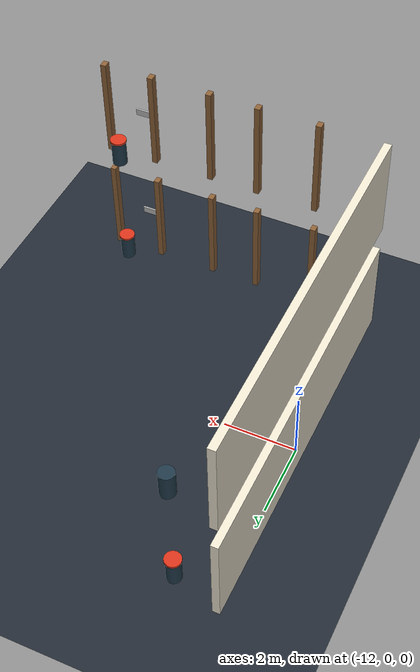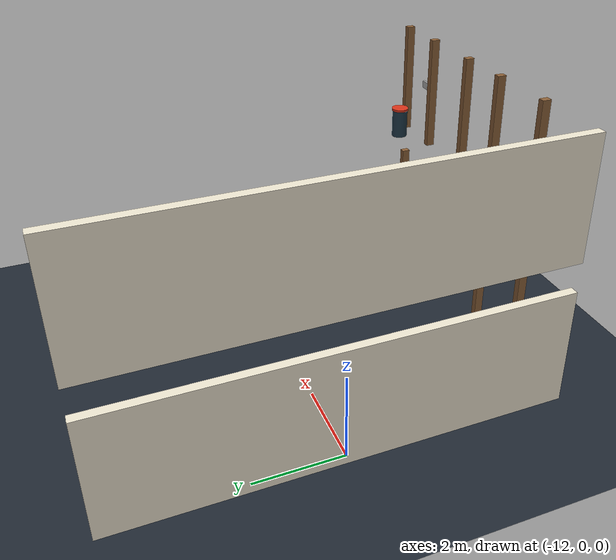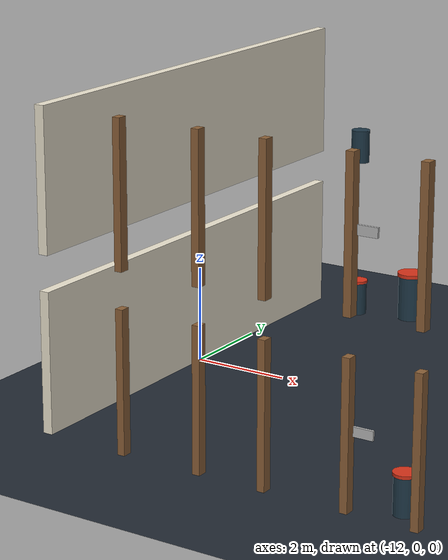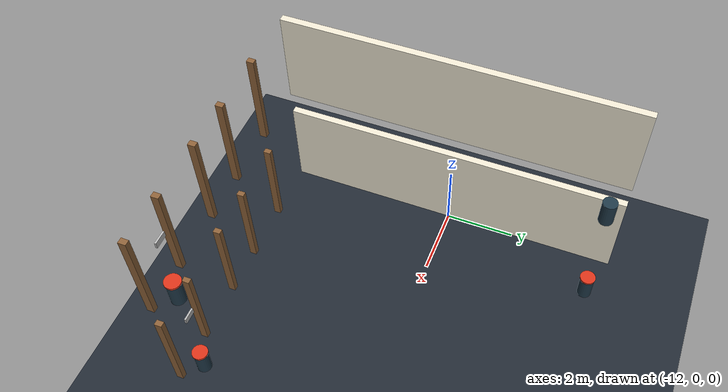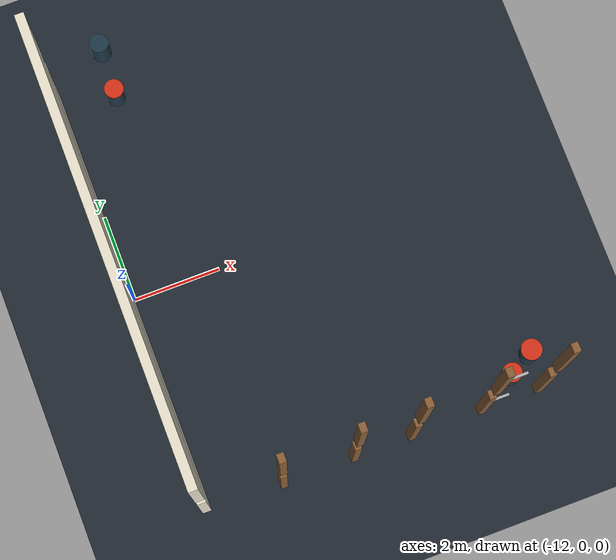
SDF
<sdf version="1.6">
 <world name="hotel_two_floor">
  <model name="ground_plane">
   <static>true</static>
   <link name="link">
    <collision name="col">
     <geometry><plane><normal>0 0 1</normal><size>100 100</size></plane></geometry>
    </collision>
    <visual name="vis">
     <geometry><plane><normal>0 0 1</normal><size>100 100</size></plane></geometry>
     <material><ambient>0.13 0.16 0.20 1</ambient><diffuse>0.13 0.16 0.20 1</diffuse></material>
    </visual>
   </link>
  </model>
  <model name="f1_wall_west">
   <static>true</static>
   <pose>-12.1000 0.0000 1.4000 0 0 0</pose>
   <link name="link">
    <collision name="col"><geometry><box><size>0.2000 10.0000 2.8000</size></box></geometry></collision>
    <visual name="vis">
     <geometry><box><size>0.2000 10.0000 2.8000</size></box></geometry>
     <material>
      <ambient>0.93 0.90 0.82 1</ambient>
      <diffuse>0.93 0.90 0.82 1</diffuse>
      <specular>0.10 0.10 0.10 1</specular>
     </material>
    </visual>
   </link>
  </model>
  <model name="f1_dp_s0L">
   <static>true</static>
   <pose>-10.3250 -5.0000 1.4000 0 0 0</pose>
   <link name="link">
    <collision name="col"><geometry><box><size>0.1500 0.2000 2.8000</size></box></geometry></collision>
    <visual name="vis">
     <geometry><box><size>0.1500 0.2000 2.8000</size></box></geometry>
     <material>
      <ambient>0.55 0.38 0.22 1</ambient>
      <diffuse>0.55 0.38 0.22 1</diffuse>
      <specular>0.20 0.20 0.20 1</specular>
     </material>
    </visual>
   </link>
  </model>
  <model name="f1_dp_s0R">
   <static>true</static>
   <pose>-8.6750 -5.0000 1.4000 0 0 0</pose>
   <link name="link">
    <collision name="col"><geometry><box><size>0.1500 0.2000 2.8000</size></box></geometry></collision>
    <visual name="vis">
     <geometry><box><size>0.1500 0.2000 2.8000</size></box></geometry>
     <material>
      <ambient>0.55 0.38 0.22 1</ambient>
      <diffuse>0.55 0.38 0.22 1</diffuse>
      <specular>0.20 0.20 0.20 1</specular>
     </material>
    </visual>
   </link>
  </model>
  <model name="f1_dp_s1L">
   <static>true</static>
   <pose>-7.3250 -5.0000 1.4000 0 0 0</pose>
   <link name="link">
    <collision name="col"><geometry><box><size>0.1500 0.2000 2.8000</size></box></geometry></collision>
    <visual name="vis">
     <geometry><box><size>0.1500 0.2000 2.8000</size></box></geometry>
     <material>
      <ambient>0.55 0.38 0.22 1</ambient>
      <diffuse>0.55 0.38 0.22 1</diffuse>
      <specular>0.20 0.20 0.20 1</specular>
     </material>
    </visual>
   </link>
  </model>
  <model name="f1_dp_s1R">
   <static>true</static>
   <pose>-5.6750 -5.0000 1.4000 0 0 0</pose>
   <link name="link">
    <collision name="col"><geometry><box><size>0.1500 0.2000 2.8000</size></box></geometry></collision>
    <visual name="vis">
     <geometry><box><size>0.1500 0.2000 2.8000</size></box></geometry>
     <material>
      <ambient>0.55 0.38 0.22 1</ambient>
      <diffuse>0.55 0.38 0.22 1</diffuse>
      <specular>0.20 0.20 0.20 1</specular>
     </material>
    </visual>
   </link>
  </model>
  <model name="f1_sign_s1">
   <static>true</static>
   <pose>-5.3500 -5.0250 1.5000 0 0 0</pose>
   <link name="link">
    <collision name="col"><geometry><box><size>0.3800 0.0500 0.1800</size></box></geometry></collision>
    <visual name="vis">
     <geometry><box><size>0.3800 0.0500 0.1800</size></box></geometry>
     <material>
      <material>
       <ambient>0.90 0.36 0.10 1</ambient>
       <diffuse>0.90 0.36 0.10 1</diffuse>
       <specular>0.10 0.10 0.10 1</specular>
      </material>
     </material>
    </visual>
   </link>
  </model>
  <model name="f1_dp_s2L">
   <static>true</static>
   <pose>-4.3250 -5.0000 1.4000 0 0 0</pose>
   <link name="link">
    <collision name="col"><geometry><box><size>0.1500 0.2000 2.8000</size></box></geometry></collision>
    <visual name="vis">
     <geometry><box><size>0.1500 0.2000 2.8000</size></box></geometry>
     <material>
      <ambient>0.55 0.38 0.22 1</ambient>
      <diffuse>0.55 0.38 0.22 1</diffuse>
      <specular>0.20 0.20 0.20 1</specular>
     </material>
    </visual>
   </link>
  </model>
  <model name="f1_trash_0_body">
   <static>true</static>
   <pose>-10.8000 4.5500 0.3600 0 0 0</pose>
   <link name="link">
    <visual name="vis">
     <geometry><cylinder><radius>0.2</radius><length>0.72</length></cylinder></geometry>
     <material>
      <ambient>0.12 0.22 0.28 1</ambient>
      <diffuse>0.12 0.22 0.28 1</diffuse>
      <specular>0.30 0.30 0.30 1</specular>
     </material>
    </visual>
   </link>
  </model>
  <model name="f1_trash_0_lid">
   <static>true</static>
   <pose>-10.8000 4.5500 0.7500 0 0 0</pose>
   <link name="link">
    <visual name="vis">
     <geometry><cylinder><radius>0.22</radius><length>0.06</length></cylinder></geometry>
     <material>
      <ambient>0.85 0.20 0.10 1</ambient>
      <diffuse>0.85 0.20 0.10 1</diffuse>
      <specular>0.30 0.30 0.30 1</specular>
     </material>
    </visual>
   </link>
  </model>
  <model name="f1_trash_1_body">
   <static>true</static>
   <pose>-4.8000 -4.5500 0.3600 0 0 0</pose>
   <link name="link">
    <visual name="vis">
     <geometry><cylinder><radius>0.2</radius><length>0.72</length></cylinder></geometry>
     <material>
      <ambient>0.12 0.22 0.28 1</ambient>
      <diffuse>0.12 0.22 0.28 1</diffuse>
      <specular>0.30 0.30 0.30 1</specular>
     </material>
    </visual>
   </link>
  </model>
  <model name="f1_trash_1_lid">
   <static>true</static>
   <pose>-4.8000 -4.5500 0.7500 0 0 0</pose>
   <link name="link">
    <visual name="vis">
     <geometry><cylinder><radius>0.22</radius><length>0.06</length></cylinder></geometry>
     <material>
      <ambient>0.85 0.20 0.10 1</ambient>
      <diffuse>0.85 0.20 0.10 1</diffuse>
      <specular>0.30 0.30 0.30 1</specular>
     </material>
    </visual>
   </link>
  </model>
  <model name="f2_wall_west">
   <static>true</static>
   <pose>-12.1000 0.0000 4.9000 0 0 0</pose>
   <link name="link">
    <collision name="col"><geometry><box><size>0.2000 10.0000 2.8000</size></box></geometry></collision>
    <visual name="vis">
     <geometry><box><size>0.2000 10.0000 2.8000</size></box></geometry>
     <material>
      <ambient>0.93 0.90 0.82 1</ambient>
      <diffuse>0.93 0.90 0.82 1</diffuse>
      <specular>0.10 0.10 0.10 1</specular>
     </material>
    </visual>
   </link>
  </model>
  <model name="f2_dp_s0L">
   <static>true</static>
   <pose>-10.3250 -5.0000 4.9000 0 0 0</pose>
   <link name="link">
    <collision name="col"><geometry><box><size>0.1500 0.2000 2.8000</size></box></geometry></collision>
    <visual name="vis">
     <geometry><box><size>0.1500 0.2000 2.8000</size></box></geometry>
     <material>
      <ambient>0.55 0.38 0.22 1</ambient>
      <diffuse>0.55 0.38 0.22 1</diffuse>
      <specular>0.20 0.20 0.20 1</specular>
     </material>
    </visual>
   </link>
  </model>
  <model name="f2_dp_s0R">
   <static>true</static>
   <pose>-8.6750 -5.0000 4.9000 0 0 0</pose>
   <link name="link">
    <collision name="col"><geometry><box><size>0.1500 0.2000 2.8000</size></box></geometry></collision>
    <visual name="vis">
     <geometry><box><size>0.1500 0.2000 2.8000</size></box></geometry>
     <material>
      <ambient>0.55 0.38 0.22 1</ambient>
      <diffuse>0.55 0.38 0.22 1</diffuse>
      <specular>0.20 0.20 0.20 1</specular>
     </material>
    </visual>
   </link>
  </model>
  <model name="f2_dp_s1L">
   <static>true</static>
   <pose>-7.3250 -5.0000 4.9000 0 0 0</pose>
   <link name="link">
    <collision name="col"><geometry><box><size>0.1500 0.2000 2.8000</size></box></geometry></collision>
    <visual name="vis">
     <geometry><box><size>0.1500 0.2000 2.8000</size></box></geometry>
     <material>
      <ambient>0.55 0.38 0.22 1</ambient>
      <diffuse>0.55 0.38 0.22 1</diffuse>
      <specular>0.20 0.20 0.20 1</specular>
     </material>
    </visual>
   </link>
  </model>
  <model name="f2_dp_s1R">
   <static>true</static>
   <pose>-5.6750 -5.0000 4.9000 0 0 0</pose>
   <link name="link">
    <collision name="col"><geometry><box><size>0.1500 0.2000 2.8000</size></box></geometry></collision>
    <visual name="vis">
     <geometry><box><size>0.1500 0.2000 2.8000</size></box></geometry>
     <material>
      <ambient>0.55 0.38 0.22 1</ambient>
      <diffuse>0.55 0.38 0.22 1</diffuse>
      <specular>0.20 0.20 0.20 1</specular>
     </material>
    </visual>
   </link>
  </model>
  <model name="f2_sign_s1">
   <static>true</static>
   <pose>-5.3500 -5.0250 5.0000 0 0 0</pose>
   <link name="link">
    <collision name="col"><geometry><box><size>0.3800 0.0500 0.1800</size></box></geometry></collision>
    <visual name="vis">
     <geometry><box><size>0.3800 0.0500 0.1800</size></box></geometry>
     <material>
      <material>
       <ambient>0.90 0.36 0.10 1</ambient>
       <diffuse>0.90 0.36 0.10 1</diffuse>
       <specular>0.10 0.10 0.10 1</specular>
      </material>
     </material>
    </visual>
   </link>
  </model>
  <model name="f2_dp_s2L">
   <static>true</static>
   <pose>-4.3250 -5.0000 4.9000 0 0 0</pose>
   <link name="link">
    <collision name="col"><geometry><box><size>0.1500 0.2000 2.8000</size></box></geometry></collision>
    <visual name="vis">
     <geometry><box><size>0.1500 0.2000 2.8000</size></box></geometry>
     <material>
      <ambient>0.55 0.38 0.22 1</ambient>
      <diffuse>0.55 0.38 0.22 1</diffuse>
      <specular>0.20 0.20 0.20 1</specular>
     </material>
    </visual>
   </link>
  </model>
  <model name="f2_trash_0_body">
   <static>true</static>
   <pose>-10.8000 4.5500 3.8600 0 0 0</pose>
   <link name="link">
    <visual name="vis">
     <geometry><cylinder><radius>0.2</radius><length>0.72</length></cylinder></geometry>
     <material>
      <ambient>0.12 0.22 0.28 1</ambient>
      <diffuse>0.12 0.22 0.28 1</diffuse>
      <specular>0.30 0.30 0.30 1</specular>
     </material>
    </visual>
   </link>
  </model>
  <model name="f2_trash_1_body">
   <static>true</static>
   <pose>-4.8000 -4.5500 3.8600 0 0 0</pose>
   <link name="link">
    <visual name="vis">
     <geometry><cylinder><radius>0.2</radius><length>0.72</length></cylinder></geometry>
     <material>
      <ambient>0.12 0.22 0.28 1</ambient>
      <diffuse>0.12 0.22 0.28 1</diffuse>
      <specular>0.30 0.30 0.30 1</specular>
     </material>
    </visual>
   </link>
  </model>
  <model name="f2_trash_1_lid">
   <static>true</static>
   <pose>-4.8000 -4.5500 4.2500 0 0 0</pose>
   <link name="link">
    <visual name="vis">
     <geometry><cylinder><radius>0.22</radius><length>0.06</length></cylinder></geometry>
     <material>
      <ambient>0.85 0.20 0.10 1</ambient>
      <diffuse>0.85 0.20 0.10 1</diffuse>
      <specular>0.30 0.30 0.30 1</specular>
     </material>
    </visual>
   </link>
  </model>
 </world>
</sdf>
